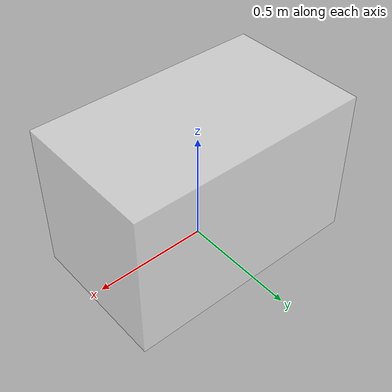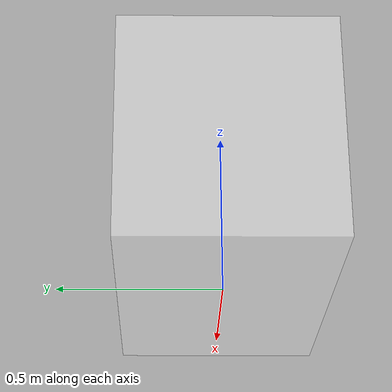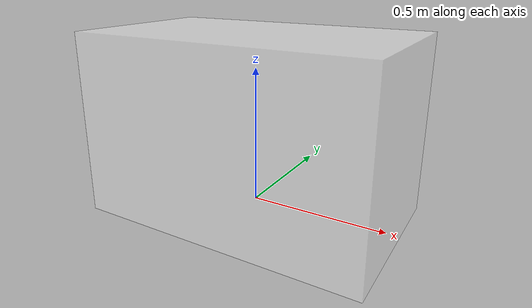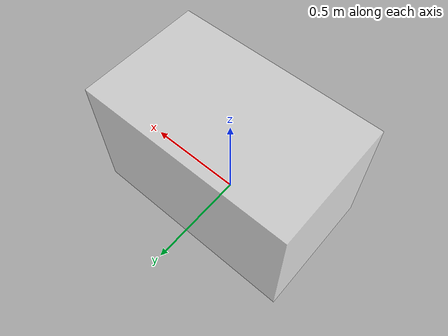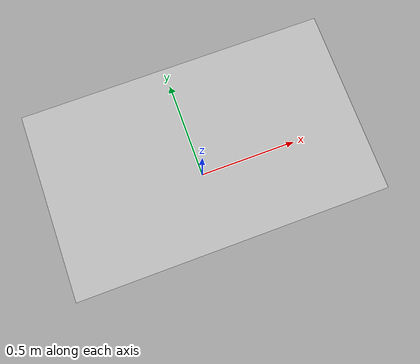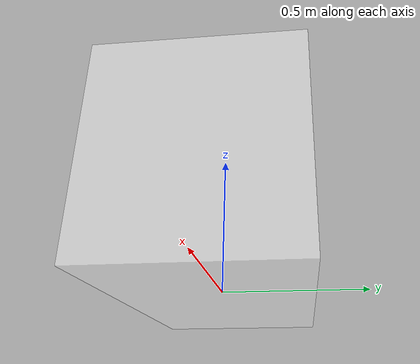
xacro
<?xml version="1.0"?>
<robot xmlns:xacro="http://www.ros.org/wiki/xacro">

    <material name="white">
        <color rgba="1 1 1 0.5"/>
    </material>

    <material name="black">
        <color rgba="0 0 0 0.5"/>
    </material>

    <material name="red">
        <color rgba="1 0.2 0.2 0.5"/>
    </material>

    <material name="green">
        <color rgba="0.2 1 0.2 0.5"/>
    </material>

    <material name="blue">
        <color rgba="0.2 0.2 1 0.5"/>
    </material>

    <link name="base_link">

    </link>

    <joint name="chassis_joint" type="fixed">
        <parent link="base_link"/>
        <child link="chassis"/>
        <origin xyz="0.0 0.0 0.29"/>
    </joint>

    <link name="chassis">
        <visual>
            <geometry>
                <box size="1.06 0.63 0.67"/>
            </geometry>
            <material name="white"/>
        </visual>
    </link>

</robot>
